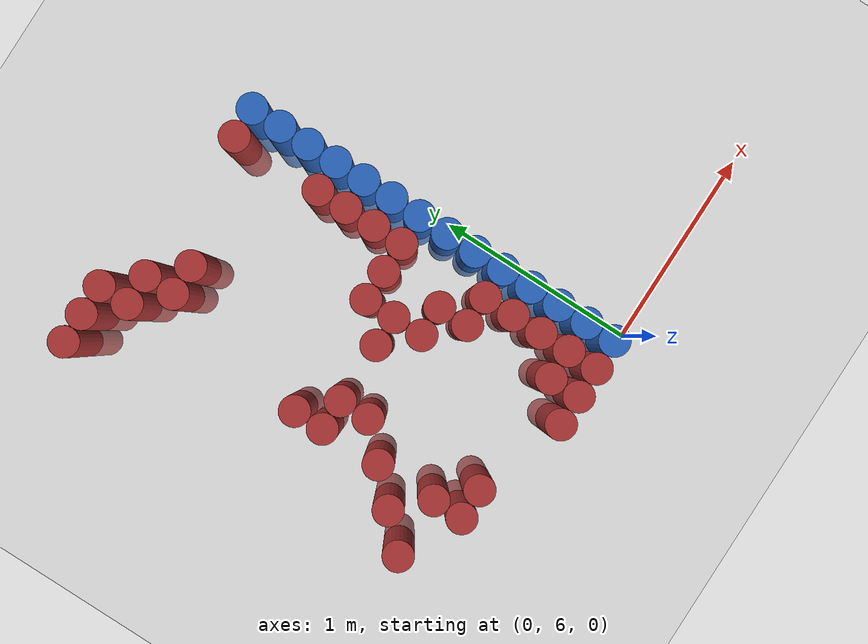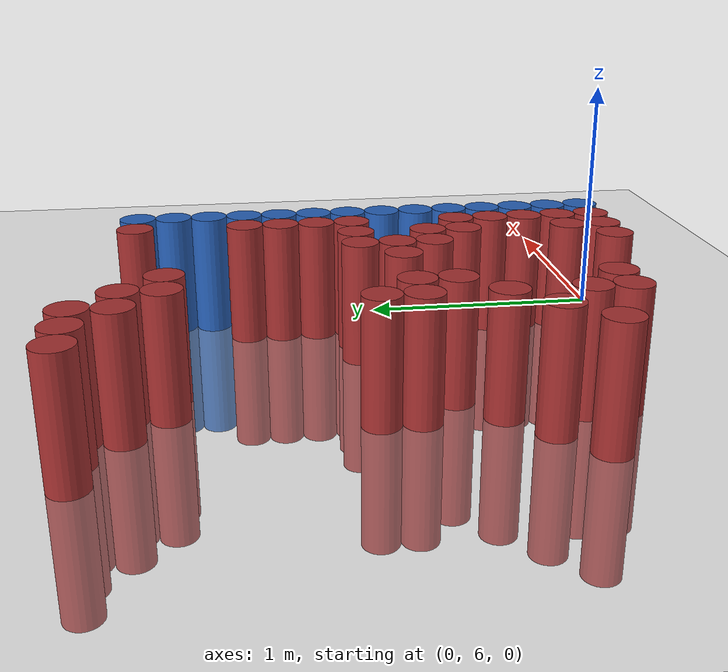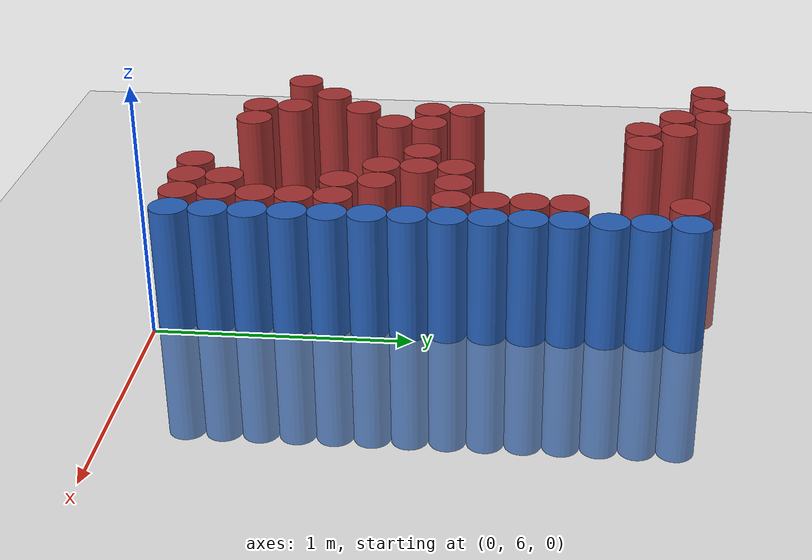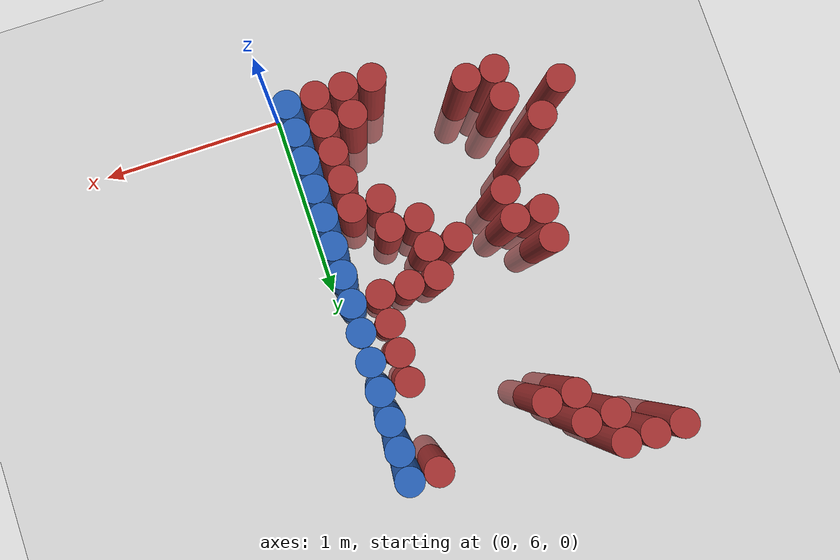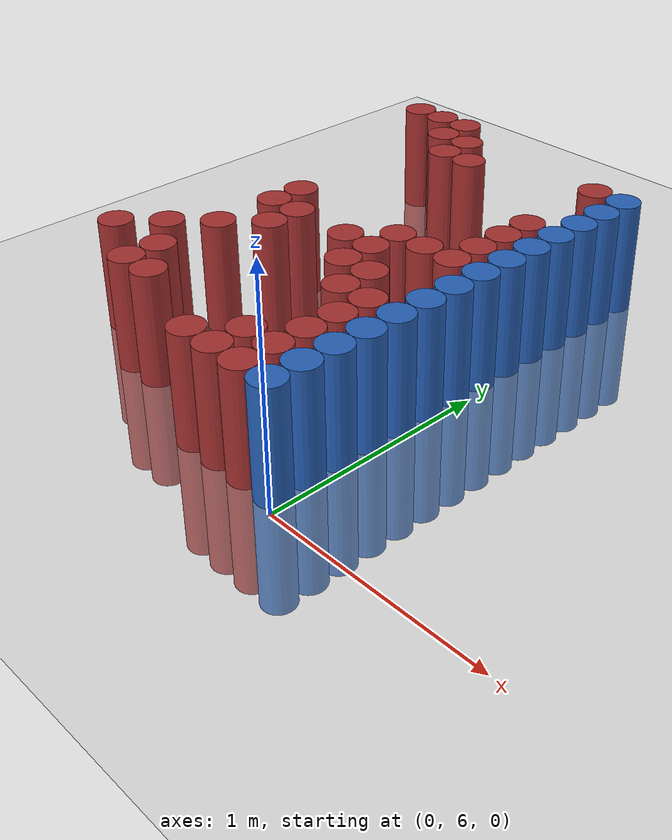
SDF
<sdf version="1.6">
 <world name="default">
  <model name="ground_plane">
   <static>1</static>
   <link name="link">
    <collision name="collision">
     <geometry><plane><normal>0 0 1</normal><size>100 100</size></plane></geometry>
     <surface><friction><ode><mu>100</mu><mu2>50</mu2></ode></friction></surface>
    </collision>
    <visual name="visual">
     <cast_shadows>0</cast_shadows>
     <geometry><plane><normal>0 0 1</normal><size>100 100</size></plane></geometry>
     <material>
      <script><uri>file://media/materials/scripts/gazebo.material</uri><name>Gazebo/Grey</name></script>
     </material>
    </visual>
   </link>
  </model>
  <model name="unit_cylinder_236">
   <static>1</static>
   <pose>-1.425000 6.375000 0.000000 0.000000 0.000000 0.000000</pose>
   <link name="link">
    <inertial>
     <mass>1</mass>
     <inertia><ixx>0.145833</ixx><ixy>0</ixy><ixz>0</ixz><iyy>0.145833</iyy><iyz>0</iyz><izz>0.125</izz></inertia>
    </inertial>
    <collision name="collision">
     <geometry><cylinder><radius>0.075000</radius><length>1</length></cylinder></geometry>
    </collision>
    <visual name="visual">
     <geometry><cylinder><radius>0.075000</radius><length>1</length></cylinder></geometry>
     <material>
      <ambient>0.648000 0.192000 0.192000 1</ambient>
      <diffuse>0.648000 0.192000 0.192000 1</diffuse>
     </material>
     <material>
      <script><name>Gazebo/Grey</name><uri>file://media/materials/scripts/gazebo.material</uri></script>
     </material>
    </visual>
   </link>
  </model>
  <model name="unit_cylinder_237">
   <static>1</static>
   <pose>-1.425000 8.175000 0.000000 0.000000 0.000000 0.000000</pose>
   <link name="link">
    <inertial>
     <mass>1</mass>
     <inertia><ixx>0.145833</ixx><ixy>0</ixy><ixz>0</ixz><iyy>0.145833</iyy><iyz>0</iyz><izz>0.125</izz></inertia>
    </inertial>
    <collision name="collision">
     <geometry><cylinder><radius>0.075000</radius><length>1</length></cylinder></geometry>
    </collision>
    <visual name="visual">
     <geometry><cylinder><radius>0.075000</radius><length>1</length></cylinder></geometry>
     <material>
      <ambient>0.648000 0.192000 0.192000 1</ambient>
      <diffuse>0.648000 0.192000 0.192000 1</diffuse>
     </material>
     <material>
      <script><name>Gazebo/Grey</name><uri>file://media/materials/scripts/gazebo.material</uri></script>
     </material>
    </visual>
   </link>
  </model>
  <model name="unit_cylinder_245">
   <static>1</static>
   <pose>-1.275000 6.525000 0.000000 0.000000 0.000000 0.000000</pose>
   <link name="link">
    <inertial>
     <mass>1</mass>
     <inertia><ixx>0.145833</ixx><ixy>0</ixy><ixz>0</ixz><iyy>0.145833</iyy><iyz>0</iyz><izz>0.125</izz></inertia>
    </inertial>
    <collision name="collision">
     <geometry><cylinder><radius>0.075000</radius><length>1</length></cylinder></geometry>
    </collision>
    <visual name="visual">
     <geometry><cylinder><radius>0.075000</radius><length>1</length></cylinder></geometry>
     <material>
      <ambient>0.648000 0.192000 0.192000 1</ambient>
      <diffuse>0.648000 0.192000 0.192000 1</diffuse>
     </material>
     <material>
      <script><name>Gazebo/Grey</name><uri>file://media/materials/scripts/gazebo.material</uri></script>
     </material>
    </visual>
   </link>
  </model>
  <model name="unit_cylinder_246">
   <static>1</static>
   <pose>-1.275000 8.175000 0.000000 0.000000 0.000000 0.000000</pose>
   <link name="link">
    <inertial>
     <mass>1</mass>
     <inertia><ixx>0.145833</ixx><ixy>0</ixy><ixz>0</ixz><iyy>0.145833</iyy><iyz>0</iyz><izz>0.125</izz></inertia>
    </inertial>
    <collision name="collision">
     <geometry><cylinder><radius>0.075000</radius><length>1</length></cylinder></geometry>
    </collision>
    <visual name="visual">
     <geometry><cylinder><radius>0.075000</radius><length>1</length></cylinder></geometry>
     <material>
      <ambient>0.648000 0.192000 0.192000 1</ambient>
      <diffuse>0.648000 0.192000 0.192000 1</diffuse>
     </material>
     <material>
      <script><name>Gazebo/Grey</name><uri>file://media/materials/scripts/gazebo.material</uri></script>
     </material>
    </visual>
   </link>
  </model>
  <model name="unit_cylinder_257">
   <static>1</static>
   <pose>-1.125000 6.225000 0.000000 0.000000 0.000000 0.000000</pose>
   <link name="link">
    <inertial>
     <mass>1</mass>
     <inertia><ixx>0.145833</ixx><ixy>0</ixy><ixz>0</ixz><iyy>0.145833</iyy><iyz>0</iyz><izz>0.125</izz></inertia>
    </inertial>
    <collision name="collision">
     <geometry><cylinder><radius>0.075000</radius><length>1</length></cylinder></geometry>
    </collision>
    <visual name="visual">
     <geometry><cylinder><radius>0.075000</radius><length>1</length></cylinder></geometry>
     <material>
      <ambient>0.648000 0.192000 0.192000 1</ambient>
      <diffuse>0.648000 0.192000 0.192000 1</diffuse>
     </material>
     <material>
      <script><name>Gazebo/Grey</name><uri>file://media/materials/scripts/gazebo.material</uri></script>
     </material>
    </visual>
   </link>
  </model>
  <model name="unit_cylinder_258">
   <static>1</static>
   <pose>-1.125000 6.375000 0.000000 0.000000 0.000000 0.000000</pose>
   <link name="link">
    <inertial>
     <mass>1</mass>
     <inertia><ixx>0.145833</ixx><ixy>0</ixy><ixz>0</ixz><iyy>0.145833</iyy><iyz>0</iyz><izz>0.125</izz></inertia>
    </inertial>
    <collision name="collision">
     <geometry><cylinder><radius>0.075000</radius><length>1</length></cylinder></geometry>
    </collision>
    <visual name="visual">
     <geometry><cylinder><radius>0.075000</radius><length>1</length></cylinder></geometry>
     <material>
      <ambient>0.648000 0.192000 0.192000 1</ambient>
      <diffuse>0.648000 0.192000 0.192000 1</diffuse>
     </material>
     <material>
      <script><name>Gazebo/Grey</name><uri>file://media/materials/scripts/gazebo.material</uri></script>
     </material>
    </visual>
   </link>
  </model>
  <model name="unit_cylinder_259">
   <static>1</static>
   <pose>-1.125000 6.675000 0.000000 0.000000 0.000000 0.000000</pose>
   <link name="link">
    <inertial>
     <mass>1</mass>
     <inertia><ixx>0.145833</ixx><ixy>0</ixy><ixz>0</ixz><iyy>0.145833</iyy><iyz>0</iyz><izz>0.125</izz></inertia>
    </inertial>
    <collision name="collision">
     <geometry><cylinder><radius>0.075000</radius><length>1</length></cylinder></geometry>
    </collision>
    <visual name="visual">
     <geometry><cylinder><radius>0.075000</radius><length>1</length></cylinder></geometry>
     <material>
      <ambient>0.648000 0.192000 0.192000 1</ambient>
      <diffuse>0.648000 0.192000 0.192000 1</diffuse>
     </material>
     <material>
      <script><name>Gazebo/Grey</name><uri>file://media/materials/scripts/gazebo.material</uri></script>
     </material>
    </visual>
   </link>
  </model>
  <model name="unit_cylinder_260">
   <static>1</static>
   <pose>-1.125000 6.975000 0.000000 0.000000 0.000000 0.000000</pose>
   <link name="link">
    <inertial>
     <mass>1</mass>
     <inertia><ixx>0.145833</ixx><ixy>0</ixy><ixz>0</ixz><iyy>0.145833</iyy><iyz>0</iyz><izz>0.125</izz></inertia>
    </inertial>
    <collision name="collision">
     <geometry><cylinder><radius>0.075000</radius><length>1</length></cylinder></geometry>
    </collision>
    <visual name="visual">
     <geometry><cylinder><radius>0.075000</radius><length>1</length></cylinder></geometry>
     <material>
      <ambient>0.648000 0.192000 0.192000 1</ambient>
      <diffuse>0.648000 0.192000 0.192000 1</diffuse>
     </material>
     <material>
      <script><name>Gazebo/Grey</name><uri>file://media/materials/scripts/gazebo.material</uri></script>
     </material>
    </visual>
   </link>
  </model>
  <model name="unit_cylinder_261">
   <static>1</static>
   <pose>-1.125000 7.125000 0.000000 0.000000 0.000000 0.000000</pose>
   <link name="link">
    <inertial>
     <mass>1</mass>
     <inertia><ixx>0.145833</ixx><ixy>0</ixy><ixz>0</ixz><iyy>0.145833</iyy><iyz>0</iyz><izz>0.125</izz></inertia>
    </inertial>
    <collision name="collision">
     <geometry><cylinder><radius>0.075000</radius><length>1</length></cylinder></geometry>
    </collision>
    <visual name="visual">
     <geometry><cylinder><radius>0.075000</radius><length>1</length></cylinder></geometry>
     <material>
      <ambient>0.648000 0.192000 0.192000 1</ambient>
      <diffuse>0.648000 0.192000 0.192000 1</diffuse>
     </material>
     <material>
      <script><name>Gazebo/Grey</name><uri>file://media/materials/scripts/gazebo.material</uri></script>
     </material>
    </visual>
   </link>
  </model>
  <model name="unit_cylinder_262">
   <static>1</static>
   <pose>-1.125000 8.025000 0.000000 0.000000 0.000000 0.000000</pose>
   <link name="link">
    <inertial>
     <mass>1</mass>
     <inertia><ixx>0.145833</ixx><ixy>0</ixy><ixz>0</ixz><iyy>0.145833</iyy><iyz>0</iyz><izz>0.125</izz></inertia>
    </inertial>
    <collision name="collision">
     <geometry><cylinder><radius>0.075000</radius><length>1</length></cylinder></geometry>
    </collision>
    <visual name="visual">
     <geometry><cylinder><radius>0.075000</radius><length>1</length></cylinder></geometry>
     <material>
      <ambient>0.648000 0.192000 0.192000 1</ambient>
      <diffuse>0.648000 0.192000 0.192000 1</diffuse>
     </material>
     <material>
      <script><name>Gazebo/Grey</name><uri>file://media/materials/scripts/gazebo.material</uri></script>
     </material>
    </visual>
   </link>
  </model>
  <model name="unit_cylinder_263">
   <static>1</static>
   <pose>-1.125000 8.175000 0.000000 0.000000 0.000000 0.000000</pose>
   <link name="link">
    <inertial>
     <mass>1</mass>
     <inertia><ixx>0.145833</ixx><ixy>0</ixy><ixz>0</ixz><iyy>0.145833</iyy><iyz>0</iyz><izz>0.125</izz></inertia>
    </inertial>
    <collision name="collision">
     <geometry><cylinder><radius>0.075000</radius><length>1</length></cylinder></geometry>
    </collision>
    <visual name="visual">
     <geometry><cylinder><radius>0.075000</radius><length>1</length></cylinder></geometry>
     <material>
      <ambient>0.648000 0.192000 0.192000 1</ambient>
      <diffuse>0.648000 0.192000 0.192000 1</diffuse>
     </material>
     <material>
      <script><name>Gazebo/Grey</name><uri>file://media/materials/scripts/gazebo.material</uri></script>
     </material>
    </visual>
   </link>
  </model>
  <model name="unit_cylinder_275">
   <static>1</static>
   <pose>-0.975000 6.225000 0.000000 0.000000 0.000000 0.000000</pose>
   <link name="link">
    <inertial>
     <mass>1</mass>
     <inertia><ixx>0.145833</ixx><ixy>0</ixy><ixz>0</ixz><iyy>0.145833</iyy><iyz>0</iyz><izz>0.125</izz></inertia>
    </inertial>
    <collision name="collision">
     <geometry><cylinder><radius>0.075000</radius><length>1</length></cylinder></geometry>
    </collision>
    <visual name="visual">
     <geometry><cylinder><radius>0.075000</radius><length>1</length></cylinder></geometry>
     <material>
      <ambient>0.648000 0.192000 0.192000 1</ambient>
      <diffuse>0.648000 0.192000 0.192000 1</diffuse>
     </material>
     <material>
      <script><name>Gazebo/Grey</name><uri>file://media/materials/scripts/gazebo.material</uri></script>
     </material>
    </visual>
   </link>
  </model>
  <model name="unit_cylinder_276">
   <static>1</static>
   <pose>-0.975000 6.825000 0.000000 0.000000 0.000000 0.000000</pose>
   <link name="link">
    <inertial>
     <mass>1</mass>
     <inertia><ixx>0.145833</ixx><ixy>0</ixy><ixz>0</ixz><iyy>0.145833</iyy><iyz>0</iyz><izz>0.125</izz></inertia>
    </inertial>
    <collision name="collision">
     <geometry><cylinder><radius>0.075000</radius><length>1</length></cylinder></geometry>
    </collision>
    <visual name="visual">
     <geometry><cylinder><radius>0.075000</radius><length>1</length></cylinder></geometry>
     <material>
      <ambient>0.648000 0.192000 0.192000 1</ambient>
      <diffuse>0.648000 0.192000 0.192000 1</diffuse>
     </material>
     <material>
      <script><name>Gazebo/Grey</name><uri>file://media/materials/scripts/gazebo.material</uri></script>
     </material>
    </visual>
   </link>
  </model>
  <model name="unit_cylinder_277">
   <static>1</static>
   <pose>-0.975000 6.975000 0.000000 0.000000 0.000000 0.000000</pose>
   <link name="link">
    <inertial>
     <mass>1</mass>
     <inertia><ixx>0.145833</ixx><ixy>0</ixy><ixz>0</ixz><iyy>0.145833</iyy><iyz>0</iyz><izz>0.125</izz></inertia>
    </inertial>
    <collision name="collision">
     <geometry><cylinder><radius>0.075000</radius><length>1</length></cylinder></geometry>
    </collision>
    <visual name="visual">
     <geometry><cylinder><radius>0.075000</radius><length>1</length></cylinder></geometry>
     <material>
      <ambient>0.648000 0.192000 0.192000 1</ambient>
      <diffuse>0.648000 0.192000 0.192000 1</diffuse>
     </material>
     <material>
      <script><name>Gazebo/Grey</name><uri>file://media/materials/scripts/gazebo.material</uri></script>
     </material>
    </visual>
   </link>
  </model>
  <model name="unit_cylinder_278">
   <static>1</static>
   <pose>-0.975000 7.875000 0.000000 0.000000 0.000000 0.000000</pose>
   <link name="link">
    <inertial>
     <mass>1</mass>
     <inertia><ixx>0.145833</ixx><ixy>0</ixy><ixz>0</ixz><iyy>0.145833</iyy><iyz>0</iyz><izz>0.125</izz></inertia>
    </inertial>
    <collision name="collision">
     <geometry><cylinder><radius>0.075000</radius><length>1</length></cylinder></geometry>
    </collision>
    <visual name="visual">
     <geometry><cylinder><radius>0.075000</radius><length>1</length></cylinder></geometry>
     <material>
      <ambient>0.648000 0.192000 0.192000 1</ambient>
      <diffuse>0.648000 0.192000 0.192000 1</diffuse>
     </material>
     <material>
      <script><name>Gazebo/Grey</name><uri>file://media/materials/scripts/gazebo.material</uri></script>
     </material>
    </visual>
   </link>
  </model>
  <model name="unit_cylinder_279">
   <static>1</static>
   <pose>-0.975000 8.025000 0.000000 0.000000 0.000000 0.000000</pose>
   <link name="link">
    <inertial>
     <mass>1</mass>
     <inertia><ixx>0.145833</ixx><ixy>0</ixy><ixz>0</ixz><iyy>0.145833</iyy><iyz>0</iyz><izz>0.125</izz></inertia>
    </inertial>
    <collision name="collision">
     <geometry><cylinder><radius>0.075000</radius><length>1</length></cylinder></geometry>
    </collision>
    <visual name="visual">
     <geometry><cylinder><radius>0.075000</radius><length>1</length></cylinder></geometry>
     <material>
      <ambient>0.648000 0.192000 0.192000 1</ambient>
      <diffuse>0.648000 0.192000 0.192000 1</diffuse>
     </material>
     <material>
      <script><name>Gazebo/Grey</name><uri>file://media/materials/scripts/gazebo.material</uri></script>
     </material>
    </visual>
   </link>
  </model>
  <model name="unit_cylinder_288">
   <static>1</static>
   <pose>-0.825000 7.875000 0.000000 0.000000 0.000000 0.000000</pose>
   <link name="link">
    <inertial>
     <mass>1</mass>
     <inertia><ixx>0.145833</ixx><ixy>0</ixy><ixz>0</ixz><iyy>0.145833</iyy><iyz>0</iyz><izz>0.125</izz></inertia>
    </inertial>
    <collision name="collision">
     <geometry><cylinder><radius>0.075000</radius><length>1</length></cylinder></geometry>
    </collision>
    <visual name="visual">
     <geometry><cylinder><radius>0.075000</radius><length>1</length></cylinder></geometry>
     <material>
      <ambient>0.648000 0.192000 0.192000 1</ambient>
      <diffuse>0.648000 0.192000 0.192000 1</diffuse>
     </material>
     <material>
      <script><name>Gazebo/Grey</name><uri>file://media/materials/scripts/gazebo.material</uri></script>
     </material>
    </visual>
   </link>
  </model>
  <model name="unit_cylinder_293">
   <static>1</static>
   <pose>-0.675000 6.975000 0.000000 0.000000 0.000000 0.000000</pose>
   <link name="link">
    <inertial>
     <mass>1</mass>
     <inertia><ixx>0.145833</ixx><ixy>0</ixy><ixz>0</ixz><iyy>0.145833</iyy><iyz>0</iyz><izz>0.125</izz></inertia>
    </inertial>
    <collision name="collision">
     <geometry><cylinder><radius>0.075000</radius><length>1</length></cylinder></geometry>
    </collision>
    <visual name="visual">
     <geometry><cylinder><radius>0.075000</radius><length>1</length></cylinder></geometry>
     <material>
      <ambient>0.648000 0.192000 0.192000 1</ambient>
      <diffuse>0.648000 0.192000 0.192000 1</diffuse>
     </material>
     <material>
      <script><name>Gazebo/Grey</name><uri>file://media/materials/scripts/gazebo.material</uri></script>
     </material>
    </visual>
   </link>
  </model>
  <model name="unit_cylinder_296">
   <static>1</static>
   <pose>-0.525000 6.075000 0.000000 0.000000 0.000000 0.000000</pose>
   <link name="link">
    <inertial>
     <mass>1</mass>
     <inertia><ixx>0.145833</ixx><ixy>0</ixy><ixz>0</ixz><iyy>0.145833</iyy><iyz>0</iyz><izz>0.125</izz></inertia>
    </inertial>
    <collision name="collision">
     <geometry><cylinder><radius>0.075000</radius><length>1</length></cylinder></geometry>
    </collision>
    <visual name="visual">
     <geometry><cylinder><radius>0.075000</radius><length>1</length></cylinder></geometry>
     <material>
      <ambient>0.648000 0.192000 0.192000 1</ambient>
      <diffuse>0.648000 0.192000 0.192000 1</diffuse>
     </material>
     <material>
      <script><name>Gazebo/Grey</name><uri>file://media/materials/scripts/gazebo.material</uri></script>
     </material>
    </visual>
   </link>
  </model>
  <model name="unit_cylinder_297">
   <static>1</static>
   <pose>-0.525000 6.825000 0.000000 0.000000 0.000000 0.000000</pose>
   <link name="link">
    <inertial>
     <mass>1</mass>
     <inertia><ixx>0.145833</ixx><ixy>0</ixy><ixz>0</ixz><iyy>0.145833</iyy><iyz>0</iyz><izz>0.125</izz></inertia>
    </inertial>
    <collision name="collision">
     <geometry><cylinder><radius>0.075000</radius><length>1</length></cylinder></geometry>
    </collision>
    <visual name="visual">
     <geometry><cylinder><radius>0.075000</radius><length>1</length></cylinder></geometry>
     <material>
      <ambient>0.648000 0.192000 0.192000 1</ambient>
      <diffuse>0.648000 0.192000 0.192000 1</diffuse>
     </material>
     <material>
      <script><name>Gazebo/Grey</name><uri>file://media/materials/scripts/gazebo.material</uri></script>
     </material>
    </visual>
   </link>
  </model>
  <model name="unit_cylinder_298">
   <static>1</static>
   <pose>-0.525000 6.975000 0.000000 0.000000 0.000000 0.000000</pose>
   <link name="link">
    <inertial>
     <mass>1</mass>
     <inertia><ixx>0.145833</ixx><ixy>0</ixy><ixz>0</ixz><iyy>0.145833</iyy><iyz>0</iyz><izz>0.125</izz></inertia>
    </inertial>
    <collision name="collision">
     <geometry><cylinder><radius>0.075000</radius><length>1</length></cylinder></geometry>
    </collision>
    <visual name="visual">
     <geometry><cylinder><radius>0.075000</radius><length>1</length></cylinder></geometry>
     <material>
      <ambient>0.648000 0.192000 0.192000 1</ambient>
      <diffuse>0.648000 0.192000 0.192000 1</diffuse>
     </material>
     <material>
      <script><name>Gazebo/Grey</name><uri>file://media/materials/scripts/gazebo.material</uri></script>
     </material>
    </visual>
   </link>
  </model>
  <model name="unit_cylinder_299">
   <static>1</static>
   <pose>-0.525000 7.125000 0.000000 0.000000 0.000000 0.000000</pose>
   <link name="link">
    <inertial>
     <mass>1</mass>
     <inertia><ixx>0.145833</ixx><ixy>0</ixy><ixz>0</ixz><iyy>0.145833</iyy><iyz>0</iyz><izz>0.125</izz></inertia>
    </inertial>
    <collision name="collision">
     <geometry><cylinder><radius>0.075000</radius><length>1</length></cylinder></geometry>
    </collision>
    <visual name="visual">
     <geometry><cylinder><radius>0.075000</radius><length>1</length></cylinder></geometry>
     <material>
      <ambient>0.648000 0.192000 0.192000 1</ambient>
      <diffuse>0.648000 0.192000 0.192000 1</diffuse>
     </material>
     <material>
      <script><name>Gazebo/Grey</name><uri>file://media/materials/scripts/gazebo.material</uri></script>
     </material>
    </visual>
   </link>
  </model>
  <model name="unit_cylinder_304">
   <static>1</static>
   <pose>-0.375000 6.075000 0.000000 0.000000 0.000000 0.000000</pose>
   <link name="link">
    <inertial>
     <mass>1</mass>
     <inertia><ixx>0.145833</ixx><ixy>0</ixy><ixz>0</ixz><iyy>0.145833</iyy><iyz>0</iyz><izz>0.125</izz></inertia>
    </inertial>
    <collision name="collision">
     <geometry><cylinder><radius>0.075000</radius><length>1</length></cylinder></geometry>
    </collision>
    <visual name="visual">
     <geometry><cylinder><radius>0.075000</radius><length>1</length></cylinder></geometry>
     <material>
      <ambient>0.648000 0.192000 0.192000 1</ambient>
      <diffuse>0.648000 0.192000 0.192000 1</diffuse>
     </material>
     <material>
      <script><name>Gazebo/Grey</name><uri>file://media/materials/scripts/gazebo.material</uri></script>
     </material>
    </visual>
   </link>
  </model>
  <model name="unit_cylinder_305">
   <static>1</static>
   <pose>-0.375000 6.225000 0.000000 0.000000 0.000000 0.000000</pose>
   <link name="link">
    <inertial>
     <mass>1</mass>
     <inertia><ixx>0.145833</ixx><ixy>0</ixy><ixz>0</ixz><iyy>0.145833</iyy><iyz>0</iyz><izz>0.125</izz></inertia>
    </inertial>
    <collision name="collision">
     <geometry><cylinder><radius>0.075000</radius><length>1</length></cylinder></geometry>
    </collision>
    <visual name="visual">
     <geometry><cylinder><radius>0.075000</radius><length>1</length></cylinder></geometry>
     <material>
      <ambient>0.648000 0.192000 0.192000 1</ambient>
      <diffuse>0.648000 0.192000 0.192000 1</diffuse>
     </material>
     <material>
      <script><name>Gazebo/Grey</name><uri>file://media/materials/scripts/gazebo.material</uri></script>
     </material>
    </visual>
   </link>
  </model>
  <model name="unit_cylinder_306">
   <static>1</static>
   <pose>-0.375000 6.675000 0.000000 0.000000 0.000000 0.000000</pose>
   <link name="link">
    <inertial>
     <mass>1</mass>
     <inertia><ixx>0.145833</ixx><ixy>0</ixy><ixz>0</ixz><iyy>0.145833</iyy><iyz>0</iyz><izz>0.125</izz></inertia>
    </inertial>
    <collision name="collision">
     <geometry><cylinder><radius>0.075000</radius><length>1</length></cylinder></geometry>
    </collision>
    <visual name="visual">
     <geometry><cylinder><radius>0.075000</radius><length>1</length></cylinder></geometry>
     <material>
      <ambient>0.648000 0.192000 0.192000 1</ambient>
      <diffuse>0.648000 0.192000 0.192000 1</diffuse>
     </material>
     <material>
      <script><name>Gazebo/Grey</name><uri>file://media/materials/scripts/gazebo.material</uri></script>
     </material>
    </visual>
   </link>
  </model>
  <model name="unit_cylinder_307">
   <static>1</static>
   <pose>-0.375000 6.825000 0.000000 0.000000 0.000000 0.000000</pose>
   <link name="link">
    <inertial>
     <mass>1</mass>
     <inertia><ixx>0.145833</ixx><ixy>0</ixy><ixz>0</ixz><iyy>0.145833</iyy><iyz>0</iyz><izz>0.125</izz></inertia>
    </inertial>
    <collision name="collision">
     <geometry><cylinder><radius>0.075000</radius><length>1</length></cylinder></geometry>
    </collision>
    <visual name="visual">
     <geometry><cylinder><radius>0.075000</radius><length>1</length></cylinder></geometry>
     <material>
      <ambient>0.648000 0.192000 0.192000 1</ambient>
      <diffuse>0.648000 0.192000 0.192000 1</diffuse>
     </material>
     <material>
      <script><name>Gazebo/Grey</name><uri>file://media/materials/scripts/gazebo.material</uri></script>
     </material>
    </visual>
   </link>
  </model>
  <model name="unit_cylinder_308">
   <static>1</static>
   <pose>-0.375000 7.125000 0.000000 0.000000 0.000000 0.000000</pose>
   <link name="link">
    <inertial>
     <mass>1</mass>
     <inertia><ixx>0.145833</ixx><ixy>0</ixy><ixz>0</ixz><iyy>0.145833</iyy><iyz>0</iyz><izz>0.125</izz></inertia>
    </inertial>
    <collision name="collision">
     <geometry><cylinder><radius>0.075000</radius><length>1</length></cylinder></geometry>
    </collision>
    <visual name="visual">
     <geometry><cylinder><radius>0.075000</radius><length>1</length></cylinder></geometry>
     <material>
      <ambient>0.648000 0.192000 0.192000 1</ambient>
      <diffuse>0.648000 0.192000 0.192000 1</diffuse>
     </material>
     <material>
      <script><name>Gazebo/Grey</name><uri>file://media/materials/scripts/gazebo.material</uri></script>
     </material>
    </visual>
   </link>
  </model>
  <model name="unit_cylinder_317">
   <static>1</static>
   <pose>-0.225000 6.075000 0.000000 0.000000 0.000000 0.000000</pose>
   <link name="link">
    <inertial>
     <mass>1</mass>
     <inertia><ixx>0.145833</ixx><ixy>0</ixy><ixz>0</ixz><iyy>0.145833</iyy><iyz>0</iyz><izz>0.125</izz></inertia>
    </inertial>
    <collision name="collision">
     <geometry><cylinder><radius>0.075000</radius><length>1</length></cylinder></geometry>
    </collision>
    <visual name="visual">
     <geometry><cylinder><radius>0.075000</radius><length>1</length></cylinder></geometry>
     <material>
      <ambient>0.648000 0.192000 0.192000 1</ambient>
      <diffuse>0.648000 0.192000 0.192000 1</diffuse>
     </material>
     <material>
      <script><name>Gazebo/Grey</name><uri>file://media/materials/scripts/gazebo.material</uri></script>
     </material>
    </visual>
   </link>
  </model>
  <model name="unit_cylinder_318">
   <static>1</static>
   <pose>-0.225000 6.225000 0.000000 0.000000 0.000000 0.000000</pose>
   <link name="link">
    <inertial>
     <mass>1</mass>
     <inertia><ixx>0.145833</ixx><ixy>0</ixy><ixz>0</ixz><iyy>0.145833</iyy><iyz>0</iyz><izz>0.125</izz></inertia>
    </inertial>
    <collision name="collision">
     <geometry><cylinder><radius>0.075000</radius><length>1</length></cylinder></geometry>
    </collision>
    <visual name="visual">
     <geometry><cylinder><radius>0.075000</radius><length>1</length></cylinder></geometry>
     <material>
      <ambient>0.648000 0.192000 0.192000 1</ambient>
      <diffuse>0.648000 0.192000 0.192000 1</diffuse>
     </material>
     <material>
      <script><name>Gazebo/Grey</name><uri>file://media/materials/scripts/gazebo.material</uri></script>
     </material>
    </visual>
   </link>
  </model>
  <model name="unit_cylinder_319">
   <static>1</static>
   <pose>-0.225000 6.375000 0.000000 0.000000 0.000000 0.000000</pose>
   <link name="link">
    <inertial>
     <mass>1</mass>
     <inertia><ixx>0.145833</ixx><ixy>0</ixy><ixz>0</ixz><iyy>0.145833</iyy><iyz>0</iyz><izz>0.125</izz></inertia>
    </inertial>
    <collision name="collision">
     <geometry><cylinder><radius>0.075000</radius><length>1</length></cylinder></geometry>
    </collision>
    <visual name="visual">
     <geometry><cylinder><radius>0.075000</radius><length>1</length></cylinder></geometry>
     <material>
      <ambient>0.648000 0.192000 0.192000 1</ambient>
      <diffuse>0.648000 0.192000 0.192000 1</diffuse>
     </material>
     <material>
      <script><name>Gazebo/Grey</name><uri>file://media/materials/scripts/gazebo.material</uri></script>
     </material>
    </visual>
   </link>
  </model>
  <model name="unit_cylinder_320">
   <static>1</static>
   <pose>-0.225000 6.525000 0.000000 0.000000 0.000000 0.000000</pose>
   <link name="link">
    <inertial>
     <mass>1</mass>
     <inertia><ixx>0.145833</ixx><ixy>0</ixy><ixz>0</ixz><iyy>0.145833</iyy><iyz>0</iyz><izz>0.125</izz></inertia>
    </inertial>
    <collision name="collision">
     <geometry><cylinder><radius>0.075000</radius><length>1</length></cylinder></geometry>
    </collision>
    <visual name="visual">
     <geometry><cylinder><radius>0.075000</radius><length>1</length></cylinder></geometry>
     <material>
      <ambient>0.648000 0.192000 0.192000 1</ambient>
      <diffuse>0.648000 0.192000 0.192000 1</diffuse>
     </material>
     <material>
      <script><name>Gazebo/Grey</name><uri>file://media/materials/scripts/gazebo.material</uri></script>
     </material>
    </visual>
   </link>
  </model>
  <model name="unit_cylinder_321">
   <static>1</static>
   <pose>-0.225000 6.675000 0.000000 0.000000 0.000000 0.000000</pose>
   <link name="link">
    <inertial>
     <mass>1</mass>
     <inertia><ixx>0.145833</ixx><ixy>0</ixy><ixz>0</ixz><iyy>0.145833</iyy><iyz>0</iyz><izz>0.125</izz></inertia>
    </inertial>
    <collision name="collision">
     <geometry><cylinder><radius>0.075000</radius><length>1</length></cylinder></geometry>
    </collision>
    <visual name="visual">
     <geometry><cylinder><radius>0.075000</radius><length>1</length></cylinder></geometry>
     <material>
      <ambient>0.648000 0.192000 0.192000 1</ambient>
      <diffuse>0.648000 0.192000 0.192000 1</diffuse>
     </material>
     <material>
      <script><name>Gazebo/Grey</name><uri>file://media/materials/scripts/gazebo.material</uri></script>
     </material>
    </visual>
   </link>
  </model>
  <model name="unit_cylinder_322">
   <static>1</static>
   <pose>-0.225000 7.125000 0.000000 0.000000 0.000000 0.000000</pose>
   <link name="link">
    <inertial>
     <mass>1</mass>
     <inertia><ixx>0.145833</ixx><ixy>0</ixy><ixz>0</ixz><iyy>0.145833</iyy><iyz>0</iyz><izz>0.125</izz></inertia>
    </inertial>
    <collision name="collision">
     <geometry><cylinder><radius>0.075000</radius><length>1</length></cylinder></geometry>
    </collision>
    <visual name="visual">
     <geometry><cylinder><radius>0.075000</radius><length>1</length></cylinder></geometry>
     <material>
      <ambient>0.648000 0.192000 0.192000 1</ambient>
      <diffuse>0.648000 0.192000 0.192000 1</diffuse>
     </material>
     <material>
      <script><name>Gazebo/Grey</name><uri>file://media/materials/scripts/gazebo.material</uri></script>
     </material>
    </visual>
   </link>
  </model>
  <model name="unit_cylinder_323">
   <static>1</static>
   <pose>-0.225000 7.275000 0.000000 0.000000 0.000000 0.000000</pose>
   <link name="link">
    <inertial>
     <mass>1</mass>
     <inertia><ixx>0.145833</ixx><ixy>0</ixy><ixz>0</ixz><iyy>0.145833</iyy><iyz>0</iyz><izz>0.125</izz></inertia>
    </inertial>
    <collision name="collision">
     <geometry><cylinder><radius>0.075000</radius><length>1</length></cylinder></geometry>
    </collision>
    <visual name="visual">
     <geometry><cylinder><radius>0.075000</radius><length>1</length></cylinder></geometry>
     <material>
      <ambient>0.648000 0.192000 0.192000 1</ambient>
      <diffuse>0.648000 0.192000 0.192000 1</diffuse>
     </material>
     <material>
      <script><name>Gazebo/Grey</name><uri>file://media/materials/scripts/gazebo.material</uri></script>
     </material>
    </visual>
   </link>
  </model>
  <model name="unit_cylinder_324">
   <static>1</static>
   <pose>-0.225000 7.425000 0.000000 0.000000 0.000000 0.000000</pose>
   <link name="link">
    <inertial>
     <mass>1</mass>
     <inertia><ixx>0.145833</ixx><ixy>0</ixy><ixz>0</ixz><iyy>0.145833</iyy><iyz>0</iyz><izz>0.125</izz></inertia>
    </inertial>
    <collision name="collision">
     <geometry><cylinder><radius>0.075000</radius><length>1</length></cylinder></geometry>
    </collision>
    <visual name="visual">
     <geometry><cylinder><radius>0.075000</radius><length>1</length></cylinder></geometry>
     <material>
      <ambient>0.648000 0.192000 0.192000 1</ambient>
      <diffuse>0.648000 0.192000 0.192000 1</diffuse>
     </material>
     <material>
      <script><name>Gazebo/Grey</name><uri>file://media/materials/scripts/gazebo.material</uri></script>
     </material>
    </visual>
   </link>
  </model>
  <model name="unit_cylinder_325">
   <static>1</static>
   <pose>-0.225000 7.575000 0.000000 0.000000 0.000000 0.000000</pose>
   <link name="link">
    <inertial>
     <mass>1</mass>
     <inertia><ixx>0.145833</ixx><ixy>0</ixy><ixz>0</ixz><iyy>0.145833</iyy><iyz>0</iyz><izz>0.125</izz></inertia>
    </inertial>
    <collision name="collision">
     <geometry><cylinder><radius>0.075000</radius><length>1</length></cylinder></geometry>
    </collision>
    <visual name="visual">
     <geometry><cylinder><radius>0.075000</radius><length>1</length></cylinder></geometry>
     <material>
      <ambient>0.648000 0.192000 0.192000 1</ambient>
      <diffuse>0.648000 0.192000 0.192000 1</diffuse>
     </material>
     <material>
      <script><name>Gazebo/Grey</name><uri>file://media/materials/scripts/gazebo.material</uri></script>
     </material>
    </visual>
   </link>
  </model>
  <model name="unit_cylinder_326">
   <static>1</static>
   <pose>-0.225000 8.025000 0.000000 0.000000 0.000000 0.000000</pose>
   <link name="link">
    <inertial>
     <mass>1</mass>
     <inertia><ixx>0.145833</ixx><ixy>0</ixy><ixz>0</ixz><iyy>0.145833</iyy><iyz>0</iyz><izz>0.125</izz></inertia>
    </inertial>
    <collision name="collision">
     <geometry><cylinder><radius>0.075000</radius><length>1</length></cylinder></geometry>
    </collision>
    <visual name="visual">
     <geometry><cylinder><radius>0.075000</radius><length>1</length></cylinder></geometry>
     <material>
      <ambient>0.648000 0.192000 0.192000 1</ambient>
      <diffuse>0.648000 0.192000 0.192000 1</diffuse>
     </material>
     <material>
      <script><name>Gazebo/Grey</name><uri>file://media/materials/scripts/gazebo.material</uri></script>
     </material>
    </visual>
   </link>
  </model>
  <model name="unit_cylinder_337">
   <static>1</static>
   <pose>-0.075000 6.075000 0.000000 0.000000 0.000000 0.000000</pose>
   <link name="link">
    <inertial>
     <mass>1</mass>
     <inertia><ixx>0.145833</ixx><ixy>0</ixy><ixz>0</ixz><iyy>0.145833</iyy><iyz>0</iyz><izz>0.125</izz></inertia>
    </inertial>
    <collision name="collision">
     <geometry><cylinder><radius>0.075000</radius><length>1</length></cylinder></geometry>
    </collision>
    <visual name="visual">
     <geometry><cylinder><radius>0.075000</radius><length>1</length></cylinder></geometry>
     <material>
      <ambient>0.152000 0.379000 0.720000 1</ambient>
      <diffuse>0.152000 0.379000 0.720000 1</diffuse>
     </material>
     <material>
      <script><name>Gazebo/Grey</name><uri>file://media/materials/scripts/gazebo.material</uri></script>
     </material>
    </visual>
   </link>
  </model>
  <model name="unit_cylinder_338">
   <static>1</static>
   <pose>-0.075000 6.225000 0.000000 0.000000 0.000000 0.000000</pose>
   <link name="link">
    <inertial>
     <mass>1</mass>
     <inertia><ixx>0.145833</ixx><ixy>0</ixy><ixz>0</ixz><iyy>0.145833</iyy><iyz>0</iyz><izz>0.125</izz></inertia>
    </inertial>
    <collision name="collision">
     <geometry><cylinder><radius>0.075000</radius><length>1</length></cylinder></geometry>
    </collision>
    <visual name="visual">
     <geometry><cylinder><radius>0.075000</radius><length>1</length></cylinder></geometry>
     <material>
      <ambient>0.152000 0.379000 0.720000 1</ambient>
      <diffuse>0.152000 0.379000 0.720000 1</diffuse>
     </material>
     <material>
      <script><name>Gazebo/Grey</name><uri>file://media/materials/scripts/gazebo.material</uri></script>
     </material>
    </visual>
   </link>
  </model>
  <model name="unit_cylinder_339">
   <static>1</static>
   <pose>-0.075000 6.375000 0.000000 0.000000 0.000000 0.000000</pose>
   <link name="link">
    <inertial>
     <mass>1</mass>
     <inertia><ixx>0.145833</ixx><ixy>0</ixy><ixz>0</ixz><iyy>0.145833</iyy><iyz>0</iyz><izz>0.125</izz></inertia>
    </inertial>
    <collision name="collision">
     <geometry><cylinder><radius>0.075000</radius><length>1</length></cylinder></geometry>
    </collision>
    <visual name="visual">
     <geometry><cylinder><radius>0.075000</radius><length>1</length></cylinder></geometry>
     <material>
      <ambient>0.152000 0.379000 0.720000 1</ambient>
      <diffuse>0.152000 0.379000 0.720000 1</diffuse>
     </material>
     <material>
      <script><name>Gazebo/Grey</name><uri>file://media/materials/scripts/gazebo.material</uri></script>
     </material>
    </visual>
   </link>
  </model>
  <model name="unit_cylinder_340">
   <static>1</static>
   <pose>-0.075000 6.525000 0.000000 0.000000 0.000000 0.000000</pose>
   <link name="link">
    <inertial>
     <mass>1</mass>
     <inertia><ixx>0.145833</ixx><ixy>0</ixy><ixz>0</ixz><iyy>0.145833</iyy><iyz>0</iyz><izz>0.125</izz></inertia>
    </inertial>
    <collision name="collision">
     <geometry><cylinder><radius>0.075000</radius><length>1</length></cylinder></geometry>
    </collision>
    <visual name="visual">
     <geometry><cylinder><radius>0.075000</radius><length>1</length></cylinder></geometry>
     <material>
      <ambient>0.152000 0.379000 0.720000 1</ambient>
      <diffuse>0.152000 0.379000 0.720000 1</diffuse>
     </material>
     <material>
      <script><name>Gazebo/Grey</name><uri>file://media/materials/scripts/gazebo.material</uri></script>
     </material>
    </visual>
   </link>
  </model>
  <model name="unit_cylinder_341">
   <static>1</static>
   <pose>-0.075000 6.675000 0.000000 0.000000 0.000000 0.000000</pose>
   <link name="link">
    <inertial>
     <mass>1</mass>
     <inertia><ixx>0.145833</ixx><ixy>0</ixy><ixz>0</ixz><iyy>0.145833</iyy><iyz>0</iyz><izz>0.125</izz></inertia>
    </inertial>
    <collision name="collision">
     <geometry><cylinder><radius>0.075000</radius><length>1</length></cylinder></geometry>
    </collision>
    <visual name="visual">
     <geometry><cylinder><radius>0.075000</radius><length>1</length></cylinder></geometry>
     <material>
      <ambient>0.152000 0.379000 0.720000 1</ambient>
      <diffuse>0.152000 0.379000 0.720000 1</diffuse>
     </material>
     <material>
      <script><name>Gazebo/Grey</name><uri>file://media/materials/scripts/gazebo.material</uri></script>
     </material>
    </visual>
   </link>
  </model>
  <model name="unit_cylinder_342">
   <static>1</static>
   <pose>-0.075000 6.825000 0.000000 0.000000 0.000000 0.000000</pose>
   <link name="link">
    <inertial>
     <mass>1</mass>
     <inertia><ixx>0.145833</ixx><ixy>0</ixy><ixz>0</ixz><iyy>0.145833</iyy><iyz>0</iyz><izz>0.125</izz></inertia>
    </inertial>
    <collision name="collision">
     <geometry><cylinder><radius>0.075000</radius><length>1</length></cylinder></geometry>
    </collision>
    <visual name="visual">
     <geometry><cylinder><radius>0.075000</radius><length>1</length></cylinder></geometry>
     <material>
      <ambient>0.152000 0.379000 0.720000 1</ambient>
      <diffuse>0.152000 0.379000 0.720000 1</diffuse>
     </material>
     <material>
      <script><name>Gazebo/Grey</name><uri>file://media/materials/scripts/gazebo.material</uri></script>
     </material>
    </visual>
   </link>
  </model>
  <model name="unit_cylinder_343">
   <static>1</static>
   <pose>-0.075000 6.975000 0.000000 0.000000 0.000000 0.000000</pose>
   <link name="link">
    <inertial>
     <mass>1</mass>
     <inertia><ixx>0.145833</ixx><ixy>0</ixy><ixz>0</ixz><iyy>0.145833</iyy><iyz>0</iyz><izz>0.125</izz></inertia>
    </inertial>
    <collision name="collision">
     <geometry><cylinder><radius>0.075000</radius><length>1</length></cylinder></geometry>
    </collision>
    <visual name="visual">
     <geometry><cylinder><radius>0.075000</radius><length>1</length></cylinder></geometry>
     <material>
      <ambient>0.152000 0.379000 0.720000 1</ambient>
      <diffuse>0.152000 0.379000 0.720000 1</diffuse>
     </material>
     <material>
      <script><name>Gazebo/Grey</name><uri>file://media/materials/scripts/gazebo.material</uri></script>
     </material>
    </visual>
   </link>
  </model>
  <model name="unit_cylinder_344">
   <static>1</static>
   <pose>-0.075000 7.125000 0.000000 0.000000 0.000000 0.000000</pose>
   <link name="link">
    <inertial>
     <mass>1</mass>
     <inertia><ixx>0.145833</ixx><ixy>0</ixy><ixz>0</ixz><iyy>0.145833</iyy><iyz>0</iyz><izz>0.125</izz></inertia>
    </inertial>
    <collision name="collision">
     <geometry><cylinder><radius>0.075000</radius><length>1</length></cylinder></geometry>
    </collision>
    <visual name="visual">
     <geometry><cylinder><radius>0.075000</radius><length>1</length></cylinder></geometry>
     <material>
      <ambient>0.152000 0.379000 0.720000 1</ambient>
      <diffuse>0.152000 0.379000 0.720000 1</diffuse>
     </material>
     <material>
      <script><name>Gazebo/Grey</name><uri>file://media/materials/scripts/gazebo.material</uri></script>
     </material>
    </visual>
   </link>
  </model>
  <model name="unit_cylinder_345">
   <static>1</static>
   <pose>-0.075000 7.275000 0.000000 0.000000 0.000000 0.000000</pose>
   <link name="link">
    <inertial>
     <mass>1</mass>
     <inertia><ixx>0.145833</ixx><ixy>0</ixy><ixz>0</ixz><iyy>0.145833</iyy><iyz>0</iyz><izz>0.125</izz></inertia>
    </inertial>
    <collision name="collision">
     <geometry><cylinder><radius>0.075000</radius><length>1</length></cylinder></geometry>
    </collision>
    <visual name="visual">
     <geometry><cylinder><radius>0.075000</radius><length>1</length></cylinder></geometry>
     <material>
      <ambient>0.152000 0.379000 0.720000 1</ambient>
      <diffuse>0.152000 0.379000 0.720000 1</diffuse>
     </material>
     <material>
      <script><name>Gazebo/Grey</name><uri>file://media/materials/scripts/gazebo.material</uri></script>
     </material>
    </visual>
   </link>
  </model>
  <model name="unit_cylinder_346">
   <static>1</static>
   <pose>-0.075000 7.425000 0.000000 0.000000 0.000000 0.000000</pose>
   <link name="link">
    <inertial>
     <mass>1</mass>
     <inertia><ixx>0.145833</ixx><ixy>0</ixy><ixz>0</ixz><iyy>0.145833</iyy><iyz>0</iyz><izz>0.125</izz></inertia>
    </inertial>
    <collision name="collision">
     <geometry><cylinder><radius>0.075000</radius><length>1</length></cylinder></geometry>
    </collision>
    <visual name="visual">
     <geometry><cylinder><radius>0.075000</radius><length>1</length></cylinder></geometry>
     <material>
      <ambient>0.152000 0.379000 0.720000 1</ambient>
      <diffuse>0.152000 0.379000 0.720000 1</diffuse>
     </material>
     <material>
      <script><name>Gazebo/Grey</name><uri>file://media/materials/scripts/gazebo.material</uri></script>
     </material>
    </visual>
   </link>
  </model>
  <model name="unit_cylinder_347">
   <static>1</static>
   <pose>-0.075000 7.575000 0.000000 0.000000 0.000000 0.000000</pose>
   <link name="link">
    <inertial>
     <mass>1</mass>
     <inertia><ixx>0.145833</ixx><ixy>0</ixy><ixz>0</ixz><iyy>0.145833</iyy><iyz>0</iyz><izz>0.125</izz></inertia>
    </inertial>
    <collision name="collision">
     <geometry><cylinder><radius>0.075000</radius><length>1</length></cylinder></geometry>
    </collision>
    <visual name="visual">
     <geometry><cylinder><radius>0.075000</radius><length>1</length></cylinder></geometry>
     <material>
      <ambient>0.152000 0.379000 0.720000 1</ambient>
      <diffuse>0.152000 0.379000 0.720000 1</diffuse>
     </material>
     <material>
      <script><name>Gazebo/Grey</name><uri>file://media/materials/scripts/gazebo.material</uri></script>
     </material>
    </visual>
   </link>
  </model>
  <model name="unit_cylinder_348">
   <static>1</static>
   <pose>-0.075000 7.725000 0.000000 0.000000 0.000000 0.000000</pose>
   <link name="link">
    <inertial>
     <mass>1</mass>
     <inertia><ixx>0.145833</ixx><ixy>0</ixy><ixz>0</ixz><iyy>0.145833</iyy><iyz>0</iyz><izz>0.125</izz></inertia>
    </inertial>
    <collision name="collision">
     <geometry><cylinder><radius>0.075000</radius><length>1</length></cylinder></geometry>
    </collision>
    <visual name="visual">
     <geometry><cylinder><radius>0.075000</radius><length>1</length></cylinder></geometry>
     <material>
      <ambient>0.152000 0.379000 0.720000 1</ambient>
      <diffuse>0.152000 0.379000 0.720000 1</diffuse>
     </material>
     <material>
      <script><name>Gazebo/Grey</name><uri>file://media/materials/scripts/gazebo.material</uri></script>
     </material>
    </visual>
   </link>
  </model>
  <model name="unit_cylinder_349">
   <static>1</static>
   <pose>-0.075000 7.875000 0.000000 0.000000 0.000000 0.000000</pose>
   <link name="link">
    <inertial>
     <mass>1</mass>
     <inertia><ixx>0.145833</ixx><ixy>0</ixy><ixz>0</ixz><iyy>0.145833</iyy><iyz>0</iyz><izz>0.125</izz></inertia>
    </inertial>
    <collision name="collision">
     <geometry><cylinder><radius>0.075000</radius><length>1</length></cylinder></geometry>
    </collision>
    <visual name="visual">
     <geometry><cylinder><radius>0.075000</radius><length>1</length></cylinder></geometry>
     <material>
      <ambient>0.152000 0.379000 0.720000 1</ambient>
      <diffuse>0.152000 0.379000 0.720000 1</diffuse>
     </material>
     <material>
      <script><name>Gazebo/Grey</name><uri>file://media/materials/scripts/gazebo.material</uri></script>
     </material>
    </visual>
   </link>
  </model>
  <model name="unit_cylinder_350">
   <static>1</static>
   <pose>-0.075000 8.025000 0.000000 0.000000 0.000000 0.000000</pose>
   <link name="link">
    <inertial>
     <mass>1</mass>
     <inertia><ixx>0.145833</ixx><ixy>0</ixy><ixz>0</ixz><iyy>0.145833</iyy><iyz>0</iyz><izz>0.125</izz></inertia>
    </inertial>
    <collision name="collision">
     <geometry><cylinder><radius>0.075000</radius><length>1</length></cylinder></geometry>
    </collision>
    <visual name="visual">
     <geometry><cylinder><radius>0.075000</radius><length>1</length></cylinder></geometry>
     <material>
      <ambient>0.152000 0.379000 0.720000 1</ambient>
      <diffuse>0.152000 0.379000 0.720000 1</diffuse>
     </material>
     <material>
      <script><name>Gazebo/Grey</name><uri>file://media/materials/scripts/gazebo.material</uri></script>
     </material>
    </visual>
   </link>
  </model>
 </world>
</sdf>
